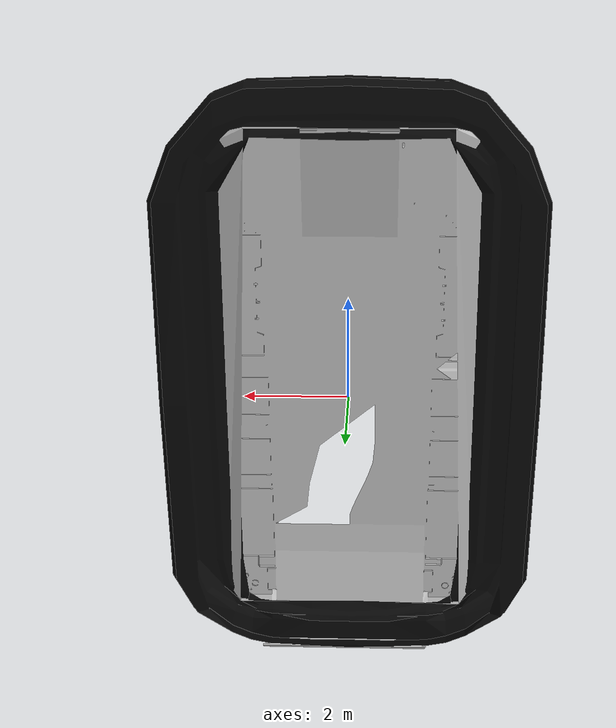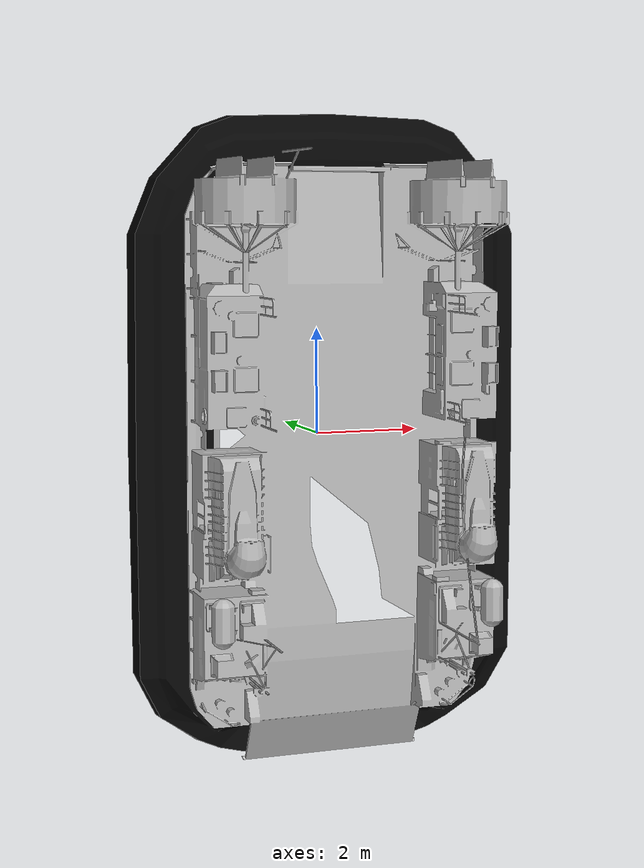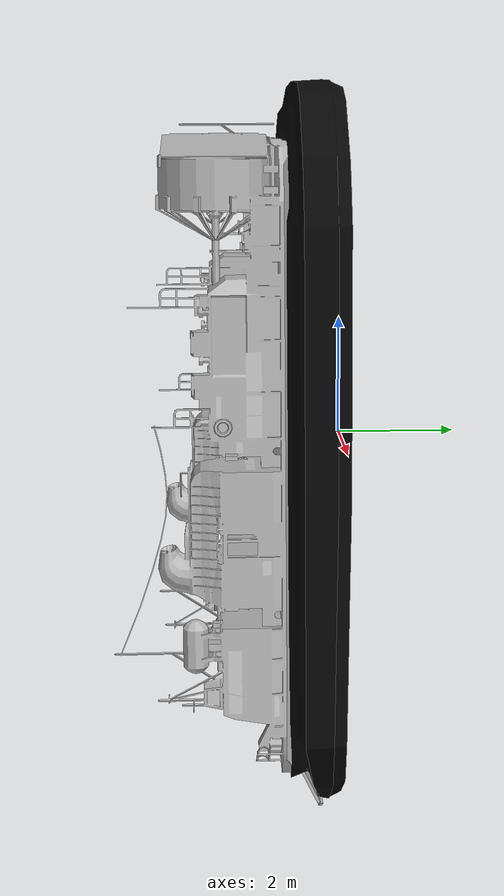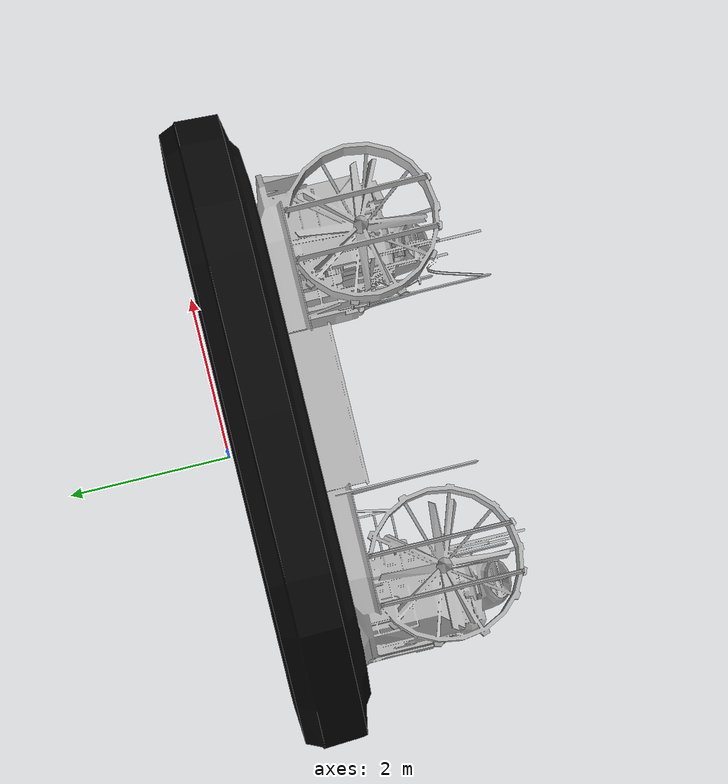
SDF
<?xml version='1.0' ?>
<sdf version="1.6">
    <model name="CubeSoft">
        <static>true</static>
        <link name="link">
            <pose>0 0 0 1.57 3.14159 0</pose>
            <collision name="collision">
                <geometry>
                    <mesh>
                        <uri>meshes/warship2.dae</uri>
                        <scale>15 15 15</scale>
                    </mesh>
                </geometry>
            </collision>
            <visual name="visual">
                <geometry>
                    <mesh>
                        <uri>meshes/warship2.dae</uri>
                        <scale>15 15 15</scale>
                    </mesh>
                </geometry>
            </visual>
        </link>
    </model>
</sdf>
